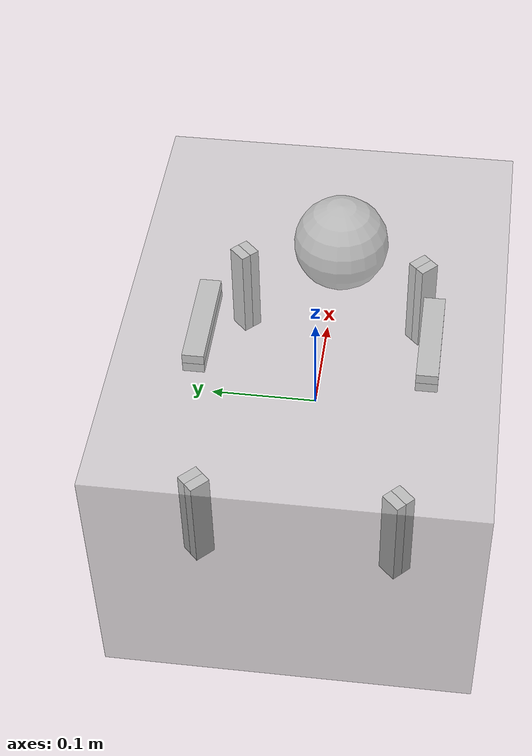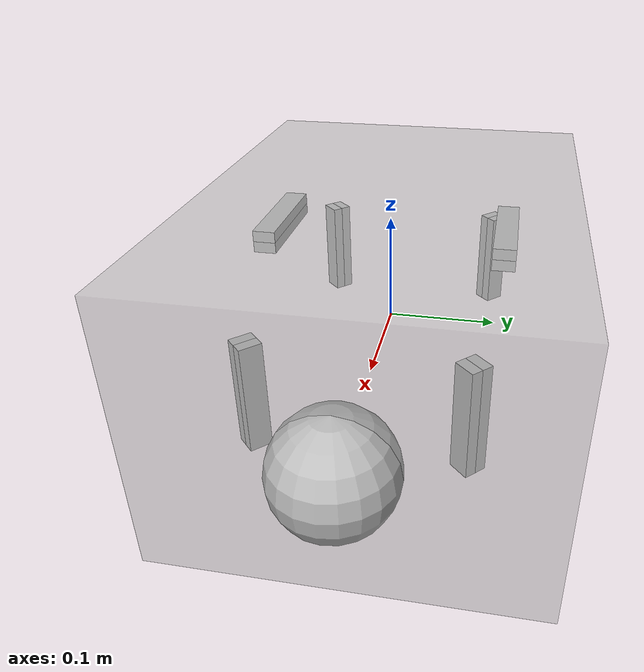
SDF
<?xml version="1.0" ?>
<sdf version="1.6">
  <world name="rov_simulation">

    <physics name="1ms" type="ode">
      <max_step_size>0.001</max_step_size>
      <real_time_factor>1.0</real_time_factor>
    </physics>
    <plugin
      filename="ignition-gazebo-physics-system"
      name="ignition::gazebo::systems::Physics">
    </plugin>
    <plugin
      filename="ignition-gazebo-user-commands-system"
      name="ignition::gazebo::systems::UserCommands">
    </plugin>
    <plugin
      filename="ignition-gazebo-scene-broadcaster-system"
      name="ignition::gazebo::systems::SceneBroadcaster">
    </plugin>
    <plugin
      filename="ignition-gazebo-buoyancy-system"
      name="ignition::gazebo::systems::Buoyancy">
      <uniform_fluid_density>1000</uniform_fluid_density>
    </plugin>

    <light type="directional" name="sun">
      <cast_shadows>true</cast_shadows>
      <pose>0 0 10 0 0 0</pose>
      <diffuse>1 1 1 1</diffuse>
      <specular>0.5 0.5 0.5 1</specular>
      <attenuation>
        <range>1000</range>
        <constant>0.9</constant>
        <linear>0.01</linear>
        <quadratic>0.001</quadratic>
      </attenuation>
      <direction>-0.5 0.1 -0.9</direction>
    </light>

  <model name="bluerov2">
    <pose>0 0 0 0 0 0</pose>

    <!-- BlueROV2 thruster reference: http://www.ardusub.com/introduction/features.html -->
    <!-- fluid_density: 1000 -->
    <!-- displaced_mass: 10.05 -->

    <link name="base_link">
      <inertial>
        <pose>0 0 0.011 0 0 0</pose>
        <mass>10</mass>
        <inertia>
          <ixx>0.09873097998042396</ixx>
          <ixy>0</ixy>
          <ixz>0</ixz>
          <iyy>0.17756847998042397</iyy>
          <iyz>0</iyz>
          <izz>0.2692441666666667</izz>
        </inertia>
      </inertial>

      <visual name="base_link_box">
        <pose>0 0 0 0 0 0</pose>
        <transparency>0.5</transparency>
        <geometry>
          <box>
            <size>0.457 0.338 0.25</size>
          </box>
        </geometry>
      </visual>

      <visual name="base_link_dome">
        <pose>0.2285 0 0 0 0 0</pose>
        <geometry>
          <sphere>
            <radius>0.05</radius>
          </sphere>
        </geometry>
        <material>
          <emissive>0 1 0 0</emissive>
        </material>
      </visual>

      <!-- Collision volume * fluid_density == displaced mass, used by BuoyancyPlugin -->
      <collision name="base_link_collision">
        <pose>0 0 0.06 0 0 0</pose>
        <geometry>
          <box>
            <size>0.457 0.338 0.06506286173008947</size>
          </box>
        </geometry>
      </collision>

      <!-- IMU sensor gyro and accel data will be sent to ArduSub -->
      <sensor name="imu_sensor" type="imu">
        <!-- Transform from the Ignition Gazebo body frame (x-forward, y-left, z-up)
             to the ArduPilot body frame (x-forward, y-right, z-down) -->
        <pose>0 0 0 3.141592653589793 0 0</pose>
        <always_on>1</always_on>
        <update_rate>1000.0</update_rate>
      </sensor>

    </link>

    <!-- Hydrodynamics plugin -->
    <plugin
        filename="ignition-gazebo-hydrodynamics-system"
        name="ignition::gazebo::systems::Hydrodynamics">
      <link_name>base_link</link_name>
      <water_density>1000</water_density>
      <!-- Added mass: -->
      <xDotU>0</xDotU>
      <yDotV>0</yDotV>
      <zDotW>0</zDotW>
      <kDotP>0</kDotP>
      <mDotQ>0</mDotQ>
      <nDotR>0</nDotR>
      <!-- First order stability derivative: -->
      <xU>0</xU>
      <yV>0</yV>
      <zW>0</zW>
      <kP>0</kP>
      <mQ>0</mQ>
      <nR>0</nR>
      <!-- Second order stability derivative: -->
      <xUU>-33.800000000000004</xUU>
      <yVV>-54.26875</yVV>
      <zWW>-73.37135</zWW>
      <kPP>-4.0</kPP>
      <mQQ>-4.0</mQQ>
      <nRR>-4.0</nRR>
    </plugin>

    <link name="thruster1">
      <pose>0.15 -0.09 0 -1.5707963267948966 1.5707963267948966 -0.7853981633974483</pose>
      <visual name="thruster_front">
        <pose>0 0 0.005 0 0 0</pose>
        <geometry>
          <box>
            <size>0.1 0.02 0.01</size>
          </box>
        </geometry>
        <material>
          <emissive>0 0 1 0</emissive>
        </material>
      </visual>
      <visual name="thruster_back">
        <pose>0 0 -0.005 0 0 0</pose>
        <geometry>
          <box>
            <size>0.1 0.02 0.01</size>
          </box>
        </geometry>
        <material>
          <emissive>1 0 0 0</emissive>
        </material>
      </visual>
      <inertial>
        <mass>0.002</mass>
        <inertia>
          <ixx>0.001</ixx>
          <ixy>0</ixy>
          <ixz>0</ixz>
          <iyy>0.001</iyy>
          <iyz>0</iyz>
          <izz>0.001</izz>
        </inertia>
      </inertial>
    </link>

    <link name="thruster2">
      <pose>0.15 0.09 0 -1.5707963267948966 1.5707963267948966 -2.356194490192345</pose>
      <visual name="thruster_front">
        <pose>0 0 0.005 0 0 0</pose>
        <geometry>
          <box>
            <size>0.1 0.02 0.01</size>
          </box>
        </geometry>
        <material>
          <emissive>0 0 1 0</emissive>
        </material>
      </visual>
      <visual name="thruster_back">
        <pose>0 0 -0.005 0 0 0</pose>
        <geometry>
          <box>
            <size>0.1 0.02 0.01</size>
          </box>
        </geometry>
        <material>
          <emissive>1 0 0 0</emissive>
        </material>
      </visual>
      <inertial>
        <mass>0.002</mass>
        <inertia>
          <ixx>0.001</ixx>
          <ixy>0</ixy>
          <ixz>0</ixz>
          <iyy>0.001</iyy>
          <iyz>0</iyz>
          <izz>0.001</izz>
        </inertia>
      </inertial>
    </link>

    <link name="thruster3">
      <pose>-0.15 -0.09 0 -1.5707963267948966 1.5707963267948966 0.7853981633974483</pose>
      <visual name="thruster_front">
        <pose>0 0 0.005 0 0 0</pose>
        <geometry>
          <box>
            <size>0.1 0.02 0.01</size>
          </box>
        </geometry>
        <material>
          <emissive>0 0 1 0</emissive>
        </material>
      </visual>
      <visual name="thruster_back">
        <pose>0 0 -0.005 0 0 0</pose>
        <geometry>
          <box>
            <size>0.1 0.02 0.01</size>
          </box>
        </geometry>
        <material>
          <emissive>1 0 0 0</emissive>
        </material>
      </visual>
      <inertial>
        <mass>0.002</mass>
        <inertia>
          <ixx>0.001</ixx>
          <ixy>0</ixy>
          <ixz>0</ixz>
          <iyy>0.001</iyy>
          <iyz>0</iyz>
          <izz>0.001</izz>
        </inertia>
      </inertial>
    </link>

    <link name="thruster4">
      <pose>-0.15 0.09 0 -1.5707963267948966 1.5707963267948966 2.356194490192345</pose>
      <visual name="thruster_front">
        <pose>0 0 0.005 0 0 0</pose>
        <geometry>
          <box>
            <size>0.1 0.02 0.01</size>
          </box>
        </geometry>
        <material>
          <emissive>0 0 1 0</emissive>
        </material>
      </visual>
      <visual name="thruster_back">
        <pose>0 0 -0.005 0 0 0</pose>
        <geometry>
          <box>
            <size>0.1 0.02 0.01</size>
          </box>
        </geometry>
        <material>
          <emissive>1 0 0 0</emissive>
        </material>
      </visual>
      <inertial>
        <mass>0.002</mass>
        <inertia>
          <ixx>0.001</ixx>
          <ixy>0</ixy>
          <ixz>0</ixz>
          <iyy>0.001</iyy>
          <iyz>0</iyz>
          <izz>0.001</izz>
        </inertia>
      </inertial>
    </link>

    <link name="thruster5">
      <pose>0 -0.105 0.09 0 0 0</pose>
      <visual name="thruster_front">
        <pose>0 0 0.005 0 0 0</pose>
        <geometry>
          <box>
            <size>0.1 0.02 0.01</size>
          </box>
        </geometry>
        <material>
          <emissive>0 0 1 0</emissive>
        </material>
      </visual>
      <visual name="thruster_back">
        <pose>0 0 -0.005 0 0 0</pose>
        <geometry>
          <box>
            <size>0.1 0.02 0.01</size>
          </box>
        </geometry>
        <material>
          <emissive>1 0 0 0</emissive>
        </material>
      </visual>
      <inertial>
        <mass>0.002</mass>
        <inertia>
          <ixx>0.001</ixx>
          <ixy>0</ixy>
          <ixz>0</ixz>
          <iyy>0.001</iyy>
          <iyz>0</iyz>
          <izz>0.001</izz>
        </inertia>
      </inertial>
    </link>

    <link name="thruster6">
      <pose>0 0.105 0.09 0 0 0</pose>
      <visual name="thruster_front">
        <pose>0 0 0.005 0 0 0</pose>
        <geometry>
          <box>
            <size>0.1 0.02 0.01</size>
          </box>
        </geometry>
        <material>
          <emissive>0 0 1 0</emissive>
        </material>
      </visual>
      <visual name="thruster_back">
        <pose>0 0 -0.005 0 0 0</pose>
        <geometry>
          <box>
            <size>0.1 0.02 0.01</size>
          </box>
        </geometry>
        <material>
          <emissive>1 0 0 0</emissive>
        </material>
      </visual>
      <inertial>
        <mass>0.002</mass>
        <inertia>
          <ixx>0.001</ixx>
          <ixy>0</ixy>
          <ixz>0</ixz>
          <iyy>0.001</iyy>
          <iyz>0</iyz>
          <izz>0.001</izz>
        </inertia>
      </inertial>
    </link>

    <joint name="thruster1_joint" type="revolute">
      <parent>base_link</parent>
      <child>thruster1</child>
      <axis>
        <xyz>0 0 -1</xyz>
      </axis>
    </joint>

    <joint name="thruster2_joint" type="revolute">
      <parent>base_link</parent>
      <child>thruster2</child>
      <axis>
        <xyz>0 0 -1</xyz>
      </axis>
    </joint>

    <joint name="thruster3_joint" type="revolute">
      <parent>base_link</parent>
      <child>thruster3</child>
      <axis>
        <xyz>0 0 -1</xyz>
      </axis>
    </joint>

    <joint name="thruster4_joint" type="revolute">
      <parent>base_link</parent>
      <child>thruster4</child>
      <axis>
        <xyz>0 0 -1</xyz>
      </axis>
    </joint>

    <joint name="thruster5_joint" type="revolute">
      <parent>base_link</parent>
      <child>thruster5</child>
      <axis>
        <xyz>0 0 -1</xyz>
      </axis>
    </joint>

    <joint name="thruster6_joint" type="revolute">
      <parent>base_link</parent>
      <child>thruster6</child>
      <axis>
        <xyz>0 0 -1</xyz>
      </axis>
    </joint>

    <plugin
        filename="ignition-gazebo-thruster-system"
        name="ignition::gazebo::systems::Thruster">
      <namespace>bluerov2</namespace>
      <joint_name>thruster1_joint</joint_name>
      <thrust_coefficient>0.02</thrust_coefficient>
      <fluid_density>1000</fluid_density>
      <propeller_diameter>0.1</propeller_diameter>
      <velocity_control>true</velocity_control>
      <use_angvel_cmd>False</use_angvel_cmd>
    </plugin>

    <plugin
        filename="ignition-gazebo-thruster-system"
        name="ignition::gazebo::systems::Thruster">
      <namespace>bluerov2</namespace>
      <joint_name>thruster2_joint</joint_name>
      <thrust_coefficient>0.02</thrust_coefficient>
      <fluid_density>1000</fluid_density>
      <propeller_diameter>0.1</propeller_diameter>
      <velocity_control>true</velocity_control>
      <use_angvel_cmd>False</use_angvel_cmd>
    </plugin>

    <plugin
        filename="ignition-gazebo-thruster-system"
        name="ignition::gazebo::systems::Thruster">
      <namespace>bluerov2</namespace>
      <joint_name>thruster3_joint</joint_name>
      <!-- Reverse spin to balance torque -->
      <thrust_coefficient>-0.02</thrust_coefficient>
      <fluid_density>1000</fluid_density>
      <propeller_diameter>0.1</propeller_diameter>
      <velocity_control>true</velocity_control>
      <use_angvel_cmd>False</use_angvel_cmd>
    </plugin>

    <plugin
        filename="ignition-gazebo-thruster-system"
        name="ignition::gazebo::systems::Thruster">
      <namespace>bluerov2</namespace>
      <joint_name>thruster4_joint</joint_name>
      <!-- Reverse spin to balance torque -->
      <thrust_coefficient>-0.02</thrust_coefficient>
      <fluid_density>1000</fluid_density>
      <propeller_diameter>0.1</propeller_diameter>
      <velocity_control>true</velocity_control>
      <use_angvel_cmd>False</use_angvel_cmd>
    </plugin>

    <plugin
        filename="ignition-gazebo-thruster-system"
        name="ignition::gazebo::systems::Thruster">
      <namespace>bluerov2</namespace>
      <joint_name>thruster5_joint</joint_name>
      <thrust_coefficient>0.02</thrust_coefficient>
      <fluid_density>1000</fluid_density>
      <propeller_diameter>0.1</propeller_diameter>
      <velocity_control>true</velocity_control>
      <use_angvel_cmd>False</use_angvel_cmd>
    </plugin>

    <plugin
        filename="ignition-gazebo-thruster-system"
        name="ignition::gazebo::systems::Thruster">
      <namespace>bluerov2</namespace>
      <joint_name>thruster6_joint</joint_name>
      <!-- Reverse spin to balance torque -->
      <thrust_coefficient>-0.02</thrust_coefficient>
      <fluid_density>1000</fluid_density>
      <propeller_diameter>0.1</propeller_diameter>
      <velocity_control>true</velocity_control>
      <use_angvel_cmd>False</use_angvel_cmd>
    </plugin>

    <plugin name="ArduPilotPlugin" filename="libArduPilotPlugin.so">
      <!-- Port settings -->
      <fdm_addr>127.0.0.1</fdm_addr>
      <fdm_port_in>9002</fdm_port_in>
      <connectionTimeoutMaxCount>5</connectionTimeoutMaxCount>
      <lock_step>1</lock_step>

      <!-- Transform from the Ignition Gazebo body frame (x-forward, y-left, z-up)
           to the ArduPilot body frame (x-forward, y-right, z-down) -->
      <modelXYZToAirplaneXForwardZDown>0 0 0 3.141592653589793 0 0</modelXYZToAirplaneXForwardZDown>

      <!-- Transform from the Ignition Gazebo world frame (ENU)
           to the ArduPilot world frame (NED) -->
      <gazeboXYZToNED>0 0 0 3.141592653589793 0 1.5707963267948966</gazeboXYZToNED>

      <!-- Sensors -->
      <imuName>imu_sensor</imuName>

      <!-- Thrusters -->
      <control channel="0">
        <jointName>thruster1_joint</jointName>
        <servo_min>1100</servo_min>
        <servo_max>1900</servo_max>
        <type>COMMAND</type>
        <cmd_topic>/model/bluerov2/joint/thruster1_joint/cmd_thrust</cmd_topic>
        <offset>-0.5</offset>
        <multiplier>100</multiplier>
      </control>
      <control channel="1">
        <jointName>thruster2_joint</jointName>
        <servo_min>1100</servo_min>
        <servo_max>1900</servo_max>
        <type>COMMAND</type>
        <cmd_topic>/model/bluerov2/joint/thruster2_joint/cmd_thrust</cmd_topic>
        <offset>-0.5</offset>
        <multiplier>100</multiplier>
      </control>
      <control channel="2">
        <jointName>thruster3_joint</jointName>
        <servo_min>1100</servo_min>
        <servo_max>1900</servo_max>
        <type>COMMAND</type>
        <cmd_topic>/model/bluerov2/joint/thruster3_joint/cmd_thrust</cmd_topic>
        <offset>-0.5</offset>
        <multiplier>100</multiplier>
      </control>
      <control channel="3">
        <jointName>thruster4_joint</jointName>
        <servo_min>1100</servo_min>
        <servo_max>1900</servo_max>
        <type>COMMAND</type>
        <cmd_topic>/model/bluerov2/joint/thruster4_joint/cmd_thrust</cmd_topic>
        <offset>-0.5</offset>
        <multiplier>100</multiplier>
      </control>
      <control channel="4">
        <jointName>thruster5_joint</jointName>
        <servo_min>1100</servo_min>
        <servo_max>1900</servo_max>
        <type>COMMAND</type>
        <cmd_topic>/model/bluerov2/joint/thruster5_joint/cmd_thrust</cmd_topic>
        <offset>-0.5</offset>
        <multiplier>100</multiplier>
      </control>
      <control channel="5">
        <jointName>thruster6_joint</jointName>
        <servo_min>1100</servo_min>
        <servo_max>1900</servo_max>
        <type>COMMAND</type>
        <cmd_topic>/model/bluerov2/joint/thruster6_joint/cmd_thrust</cmd_topic>
        <offset>-0.5</offset>
        <multiplier>100</multiplier>
      </control>

    </plugin>

  </model>

  </world>

</sdf>
